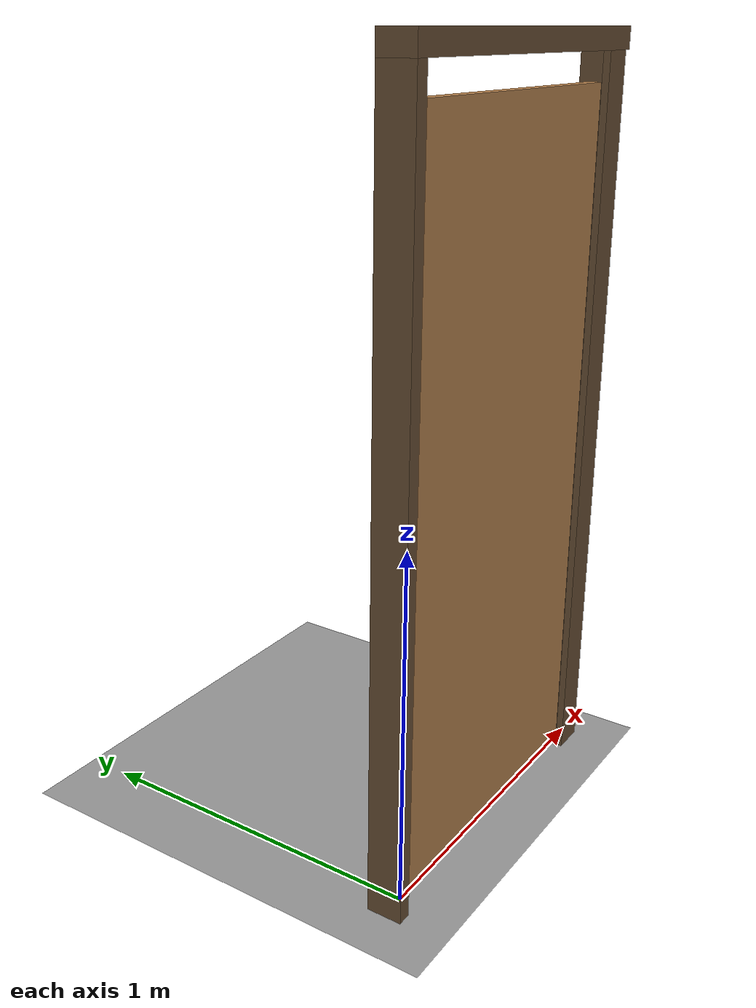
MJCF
<mujoco model="closing_door">
  <compiler angle="radian"/>
  <option timestep="0.002"/>
  <visual>
    <global offwidth="1280" offheight="720"/>
  </visual>
  <worldbody>
    <light name="sun" pos="1 -2 4" dir="-0.3 0.5 -1" diffuse="0.8 0.8 0.8"/>
    <camera name="view" pos="2.2 -2.6 1.8" xyaxes="0.76 0.65 0 -0.3 0.35 0.89"/>
    <geom name="floor" type="plane" size="5 5 0.1" rgba="0.6 0.6 0.6 1"/>
    <body name="frame" pos="0 0 0">
      <geom name="frame_hingepost" type="box" pos="-0.06 0 1.05" size="0.02 0.05 1.05" rgba="0.4 0.3 0.2 1"/>
      <geom name="frame_jamb" type="box" pos="0.95 -0.031 1.05" size="0.05 0.01 1.05" rgba="0.4 0.3 0.2 1" contype="0" conaffinity="0"/>
      <geom name="frame_latchpost" type="box" pos="0.97 0.02 1.05" size="0.03 0.04 1.05" rgba="0.4 0.3 0.2 1" contype="0" conaffinity="0"/>
      <geom name="frame_lintel" type="box" pos="0.46 0 2.13" size="0.54 0.05 0.03" rgba="0.4 0.3 0.2 1"/>
    </body>
    <body name="door" pos="0 0 0">
      <joint name="hinge" type="hinge" axis="0 0 1" pos="0 0 0" limited="true" range="0 1.7" stiffness="40" springref="-0.3" damping="15" solreflimit="0.01 1"/>
      <geom name="door_panel" type="box" pos="0.45 0 1.02" size="0.45 0.02 1.0" density="500" rgba="0.7 0.5 0.3 1"/>
      <geom name="door_knob" type="sphere" pos="0.82 0.06 1.0" size="0.03" density="500" rgba="0.9 0.8 0.2 1"/>
    </body>
  </worldbody>
  <keyframe>
    <key name="start" qpos="1.3" qvel="0"/>
  </keyframe>
</mujoco>
